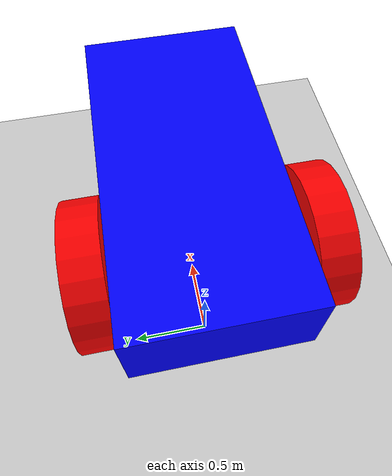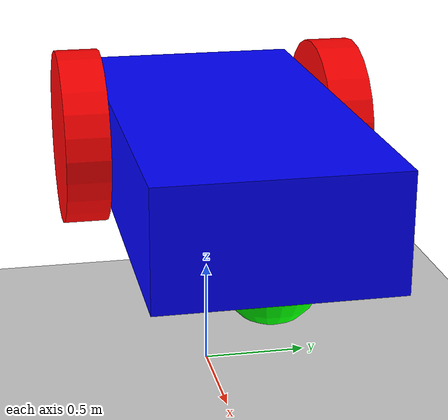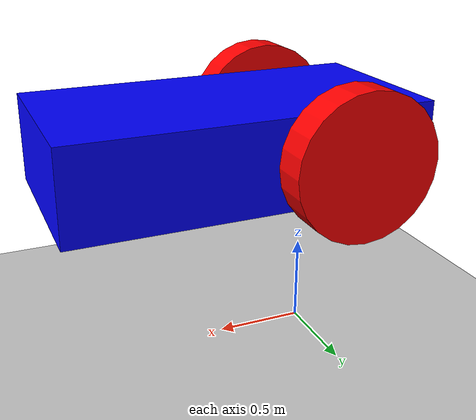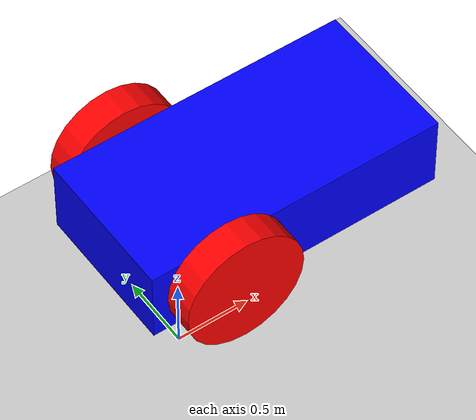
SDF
<?xml version="1.0" ?>
<sdf version="1.7">
    <world name="Moving_robot">
        <physics name="1ms" type="ignored">
            <max_step_size>0.001</max_step_size>
            <real_time_factor>1.0</real_time_factor>
        </physics>
        <plugin
            filename="libignition-gazebo-physics-system.so"
            name="ignition::gazebo::systems::Physics">
        </plugin>
        <plugin
            filename="libignition-gazebo-user-commands-system.so"
            name="ignition::gazebo::systems::UserCommands">
        </plugin>
        <plugin
            filename="libignition-gazebo-scene-broadcaster-system.so"
            name="ignition::gazebo::systems::SceneBroadcaster">
        </plugin>

        <light type="directional" name="sun">
            <cast_shadows>true</cast_shadows>
            <pose>0 0 10 0 0 0</pose>
            <diffuse>0.8 0.8 0.8 1</diffuse>
            <specular>0.2 0.2 0.2 1</specular>
            <attenuation>
                <range>1000</range>
                <constant>0.9</constant>
                <linear>0.01</linear>
                <quadratic>0.001</quadratic>
            </attenuation>
            <direction>-0.5 0.1 -0.9</direction>
        </light>

        <model name="ground_plane">
            <static>true</static>
            <link name="link">
                <collision name="collision">
                <geometry>
                    <plane>
                    <normal>0 0 1</normal>
                    </plane>
                </geometry>
                </collision>
                <visual name="visual">
                <geometry>
                    <plane>
                    <normal>0 0 1</normal>
                    <size>100 100</size>
                    </plane>
                </geometry>
                <material>
                    <ambient>0.8 0.8 0.8 1</ambient>
                    <diffuse>0.8 0.8 0.8 1</diffuse>
                    <specular>0.8 0.8 0.8 1</specular>
                </material>
                </visual>
            </link>
        </model>

        <include>
            <pose>0 0 0.8 0 0 0</pose>
            <uri>model://tuto</uri>
        </include>

    </world>
</sdf>

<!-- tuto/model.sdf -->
<sdf version="1.7">
    <model name='vehicle_blue' canonical_link='chassis'>
        <pose relative_to='world'>0 0 0 0 0 0</pose>   <!--the pose is relative to the world by default-->

        <link name='chassis'>
            <pose relative_to='__model__'>0.5 0 0.4 0 0 0</pose>
            <inertial> <!--inertial properties of the link mass, inertia matix-->
                <mass>1.14395</mass>
                <inertia>
                    <ixx>0.126164</ixx>
                    <ixy>0</ixy>
                    <ixz>0</ixz>
                    <iyy>0.416519</iyy>
                    <iyz>0</iyz>
                    <izz>0.481014</izz>
                </inertia>
            </inertial>
            <visual name='visual'>
                <geometry>
                    <box>
                        <size>2.0 1.0 0.5</size> <!--question: this size is in meter-->
                    </box>
                </geometry>
                <!--let's add color to our link-->
                <material>
                    <ambient>0.0 0.0 1.0 1</ambient>
                    <diffuse>0.0 0.0 1.0 1</diffuse>
                    <specular>0.0 0.0 1.0 1</specular>
                </material>
            </visual>
            <collision name='collision'> <!--todo: describe why we need the collision-->
                <geometry>
                    <box>
                        <size>2.0 1.0 0.5</size>
                    </box>
                </geometry>
            </collision>
            <sensor name="imu_sensor" type="imu">
                <always_on>1</always_on>
                <update_rate>1</update_rate>
                <visualize>true</visualize>
                <topic>/imu/data</topic>
            </sensor>
        </link>

        <!--let's build the left wheel-->
        <link name='left_wheel'>
            <pose relative_to="chassis">-0.5 0.6 0 -1.5707 0 0</pose> <!--angles are in radian-->
            <inertial>
                <mass>2</mass>
                <inertia>
                    [Build your own robot](SDF_tutorial_link) tutorial. You can download the robot fro   <ixx>0.145833</ixx>
                    <ixy>0</ixy>
                    <ixz>0</ixz>
                    <iyy>0.145833</iyy>
                    <iyz>0</iyz>
                    <izz>0.125</izz>
                </inertia>
            </inertial>
            <visual name='visual'>
                <geometry>
                    <cylinder>
                        <radius>0.4</radius>
                        <length>0.2</length>
                    </cylinder>
                </geometry>
                <material>
                    <ambient>1.0 0.0 0.0 1</ambient>
                    <diffuse>1.0 0.0 0.0 1</diffuse>
                    <specular>1.0 0.0 0.0 1</specular>
                </material>
            </visual>
            <collision name='collision'>
                <geometry>
                    <cylinder>
                        <radius>0.4</radius>
                        <length>0.2</length>
                    </cylinder>
                </geometry>
            </collision>
        </link>

        <!--copy and paste for right wheel but change position-->
        <link name='right_wheel'>
            <pose relative_to="chassis">-0.5 -0.6 0 -1.5707 0 0</pose> <!--angles are in radian-->
            <inertial>
                <mass>1</mass>
                <inertia>
                    <ixx>0.145833</ixx>
                    <ixy>0</ixy>
                    <ixz>0</ixz>
                    <iyy>0.145833</iyy>
                    <iyz>0</iyz>
                    <izz>0.125</izz>
                </inertia>
            </inertial>
            <visual name='visual'>
                <geometry>
                    <cylinder>
                        <radius>0.4</radius>
                        <length>0.2</length>
                    </cylinder>
                </geometry>
                <material>
                    <ambient>1.0 0.0 0.0 1</ambient>
                    <diffuse>1.0 0.0 0.0 1</diffuse>
                    <specular>1.0 0.0 0.0 1</specular>
                </material>
            </visual>
            <collision name='collision'>
                <geometry>
                    <cylinder>
                        <radius>0.4</radius>
                        <length>0.2</length>
                    </cylinder>
                </geometry>
            </collision>
        </link>

        <frame name="caster_frame" attached_to='chassis'>
            <pose>0.8 0 -0.2 0 0 0</pose>
        </frame>

        <!--caster wheel-->
        <link name='caster'>
            <pose relative_to='caster_frame'/>
            <inertial>
                <mass>1</mass>
                <inertia>
                    <ixx>0.1</ixx>
                    <ixy>0</ixy>
                    <ixz>0</ixz>
                    <iyy>0.1</iyy>
                    <iyz>0</iyz>
                    <izz>0.1</izz>
                </inertia>
            </inertial>
            <visual name='visual'>
                <geometry>
                    <sphere>
                        <radius>0.2</radius>
                    </sphere>
                </geometry>
                <material>
                    <ambient>0.0 1 0.0 1</ambient>
                    <diffuse>0.0 1 0.0 1 1</diffuse>
                    <specular>0.0 1 0.0 1</specular>
                </material>
            </visual>
            <collision name='collision'>
                <geometry>
                    <sphere>
                        <radius>0.2</radius>
                    </sphere>
                </geometry>
            </collision>
        </link>

        <!--connecting these links together using joints-->
        <joint name='left_wheel_joint' type='revolute'> <!--continous joint is not supported yet-->
            <pose relative_to='left_wheel'/>
            <parent>chassis</parent>
            <child>left_wheel</child>
            <axis>
                <xyz expressed_in='__model__'>0 1 0</xyz> <!--can be descired to any frame or even arbitrary frames-->
                <limit>
                    <lower>-1.79769e+308</lower>    <!--negative infinity-->
                    <upper>1.79769e+308</upper>     <!--positive infinity-->
                </limit>
            </axis>
        </joint>

        <joint name='right_wheel_joint' type='revolute'>
            <pose relative_to='right_wheel'/>
            <parent>chassis</parent>
            <child>right_wheel</child>
            <axis>
                <xyz expressed_in='__model__'>0 1 0</xyz>
                <limit>
                    <lower>-1.79769e+308</lower>    <!--negative infinity-->
                    <upper>1.79769e+308</upper>     <!--positive infinity-->
                </limit>
            </axis>
        </joint>

        <!--different type of joints ball joint--> <!--defult value is the child-->
        <joint name='caster_wheel' type='ball'>
            <parent>chassis</parent>
            <child>caster</child>
        </joint>

        <!-- plugin to publish the state of each joint so robot state publisher work and we can visualize robot in Rviz -->

        <plugin filename="libignition-gazebo-imu-system.so"
                name="ignition::gazebo::systems::Imu">
        </plugin>

        <!--diff drive plugin-->
        <plugin
            filename="libignition-gazebo-diff-drive-system.so"
            name="ignition::gazebo::systems::DiffDrive">
            <left_joint>left_wheel_joint</left_joint>
            <right_joint>right_wheel_joint</right_joint>
            <wheel_separation>1.2</wheel_separation>
            <wheel_radius>0.4</wheel_radius>
            <odom_publish_frequency>1</odom_publish_frequency>
            <topic>cmd_vel</topic>
        </plugin>
    </model>
</sdf>
